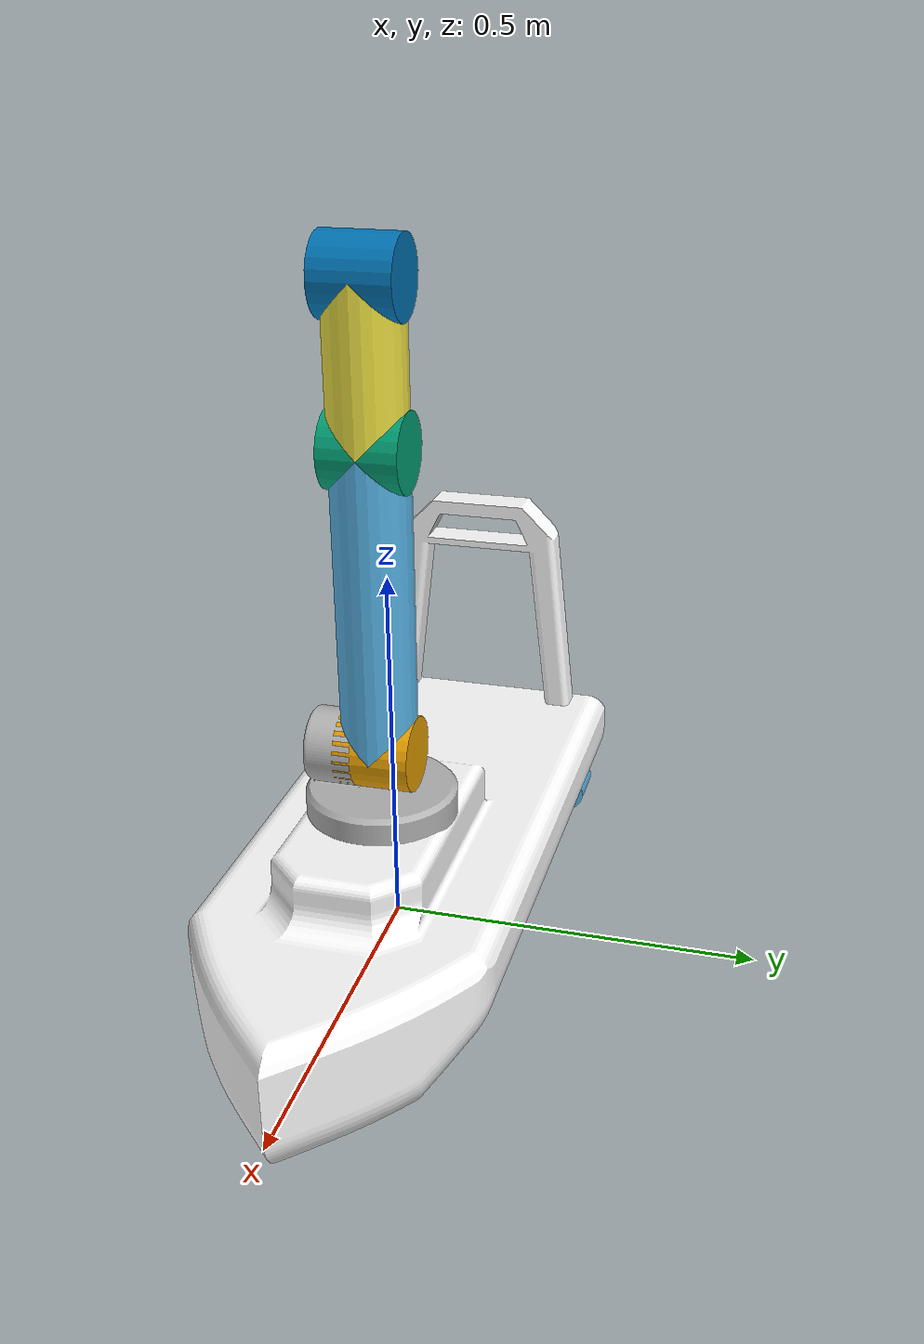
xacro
<?xml version="1.0"?>

<robot name="boat_arm" xmlns:xacro="http://www.ros.org/wiki/xacro">
  <xacro:include filename="$(find semesterprosjekt)/urdf/common_macros.xacro" />
  <xacro:include filename="$(find semesterprosjekt)/urdf/boat_arm.urdf.gazebo" />

  <material name="COLOR">
   <color rgba="1 1 1 1"/>
 </material>
  <link name='base_link'>
    <pose>0 0 0.1 0 0 0</pose>
    <visual name='chassis_visual'>
      <origin xyz="0 0 -0.1" rpy="0 0 ${pi/2}"/>
      <geometry>
        <mesh filename="package://semesterprosjekt/mesh/RobotBatPOrsjekt_v4_v5.stl" scale="0.001 0.001 0.001"/>
      </geometry>
      <material name="COLOR"/>
    </visual>
    <collision>
      <origin xyz="0 0 0.07" rpy="0 0 0"/>
      <geometry>
        <box size="1 0.4 0.1"/>
      </geometry>
    </collision>
    <inertial>
      <mass value="10"/>
      <inertia ixx="0.1075" ixy="0.0" ixz="0.0" iyy="10.0008" iyz="0.0" izz="10.0075"/>
    </inertial>
</link>

  <link name='left_thruster'>
    <visual>
      <geometry>
       <cylinder length="0.07" radius="0.03"/>
     </geometry>
     <origin rpy="${pi/2} 0 ${pi/2}" xyz="-0.465 0.15 -0.03"/>
   </visual>
  </link>

  <link name='right_thruster'>
    <visual>
      <geometry>
       <cylinder length="0.07" radius="0.03"/>
     </geometry>
     <origin rpy="${pi/2} 0 ${pi/2}" xyz="-0.465 -0.15 -0.03"/>
   </visual>
  </link>

  <joint name="base_to_left_thruster" type="fixed">
    <parent link="base_link"/>
    <child link="left_thruster"/>
  </joint>

  <joint name="base_to_right_thruster" type="fixed">
    <parent link="base_link"/>
    <child link="right_thruster"/>
  </joint>

  <joint name="left_front_wheel_j" type="continuous">
    <origin xyz="0.20 0.20 0" rpy="${-pi/2} 0 0"/>
    <parent link="base_link"/>
    <child link="lf_wheel"/>
    <axis xyz="0 0 1" rpy="0 0 0"/>
    <limit effort="100" velocity="100"/>
  </joint>

  <xacro:link_wheel link_name="lf_wheel">
    <!-- collison -->
    <origin xyz="0 0 0" rpy="0 0 0"/>
    <!-- inertia -->
    <origin xyz="0 0 0" rpy="0 0 0"/>
  </xacro:link_wheel>

  <joint name="right_front_wheel_j" type="continuous">
    <origin xyz="0.20 -0.20 0" rpy="${-pi/2} 0 0"/>
    <parent link="base_link"/>
    <child link="rf_wheel"/>
    <axis xyz="0 0 1" rpy="0 0 0"/>
    <limit effort="100" velocity="100"/>
  </joint>

  <xacro:link_wheel link_name="rf_wheel">
    <!-- collison -->
    <origin xyz="0 0 0" rpy="0 0 0"/>
    <!-- inertia -->
    <origin xyz="0 0 0" rpy="0 0 0"/>
  </xacro:link_wheel>

  <joint name="left_rear_wheel_j" type="continuous">
    <origin xyz="-0.20 0.20 0" rpy="${-pi/2} 0 0"/>
    <parent link="base_link"/>
    <child link="lr_wheel"/>
    <axis xyz="0 0 1" rpy="0 0 0"/>
    <limit effort="100" velocity="100"/>
  </joint>

  <xacro:link_wheel link_name="lr_wheel">
    <!-- collison -->
    <origin xyz="0 0 0" rpy="0 0 0"/>
    <!-- inertia -->
    <origin xyz="0 0 0" rpy="0 0 0"/>
  </xacro:link_wheel>

  <joint name="right_rear_wheel_j" type="continuous">
    <origin xyz="-0.20 -0.20 0" rpy="${-pi/2} 0 0"/>
    <parent link="base_link"/>
    <child link="rr_wheel"/>
    <axis xyz="0 0 1" rpy="0 0 0"/>
    <limit effort="100" velocity="100"/>
  </joint>

  <xacro:link_wheel link_name="rr_wheel">
    <!-- collison -->
    <origin xyz="0 0 0" rpy="0 0 0"/>
    <!-- inertia -->
    <origin xyz="0 0 0" rpy="0 0 0"/>
  </xacro:link_wheel>

  <!-- ROBOTIC ARM -->

  <!-- ARM BASE -->
  <joint type="revolute" name="arm_base_joint">
    <origin xyz="0.05 0 0.18" rpy="0 0 0"/>
    <child link="arm_base_link"/>
    <parent link="base_link"/>
    <axis xyz="0 0 1" rpy="0 0 0"/>
    <limit effort="100" velocity="100" lower="-${pi}" upper="${pi}"/>
  </joint>

  <xacro:link_cylinder link_name="arm_base_link" radius="${0.20/2}" length="0.10" density="1" mesh_name="package://semesterprosjekt/mesh/Trash_Arm_F1_Fixed04.stl">
    <!-- origin visual -->
    <origin xyz="0 0 0" rpy="0 0 ${pi/2}"/>
    <!-- origin collision -->
    <origin xyz="0 0 0" rpy="0 0 0"/>
    <!-- origin interia -->
    <origin xyz="0 0 0" rpy="0 0 0"/>
  </xacro:link_cylinder>

  <transmission name="arm_base_trans">
    <type>transmission_interface/SimpleTransmission</type>
    <joint name="arm_base_joint">
      <hardwareInterface>hardware_interface/PositionJointInterface</hardwareInterface>
    </joint>
    <actuator name="arm_base_motor">
      <hardwareInterface>hardware_interface/PositionJointInterface</hardwareInterface>
      <mechanicalReduction>1</mechanicalReduction>
    </actuator>
  </transmission>

  <!-- LINK 1 -->
  <joint type="revolute" name="link_1_joint">
    <origin xyz="0 0 0.10" rpy="-${pi/2} 0 0"/>
    <child link="link_1_link"/>
    <parent link="arm_base_link"/>
    <axis xyz="0 0 1" rpy="0 0 0"/>
    <limit effort="100" velocity="100" lower="-${pi}" upper="${pi}"/>
  </joint>

  <xacro:link_cylinder link_name="link_1_link" radius="${0.10/2}" length="0.10" density="1"  >
    <!-- origin visual -->
    <origin xyz="0 0 0" rpy="-${pi} 0 0"/>
    <!-- origin collision -->
    <origin xyz="0 0 0" rpy="0 0 0"/>
    <!-- origin interia -->
    <origin xyz="0 0 0" rpy="0 0 0"/>
  </xacro:link_cylinder>

  <transmission name="joint_1_trans">
    <type>transmission_interface/SimpleTransmission</type>
    <joint name="link_1_joint">
      <hardwareInterface>hardware_interface/PositionJointInterface</hardwareInterface>
    </joint>
    <actuator name="joint_1_motor">
      <hardwareInterface>hardware_interface/PositionJointInterface</hardwareInterface>
      <mechanicalReduction>1</mechanicalReduction>
    </actuator>
  </transmission>

  <!-- LINK 2 -->
  <joint type="revolute" name="link_2_joint">
    <origin xyz="0 -${0.40/2} 0" rpy="${pi/2} 0 0"/>
    <child link="link_2_link"/>
    <parent link="link_1_link"/>
    <axis xyz="0 0 1" rpy="0 0 0"/>
    <limit effort="100" velocity="100" lower="-${pi/2}" upper="${pi/2}"/>
  </joint>

  <xacro:link_cylinder link_name="link_2_link" radius="${0.10/2}" length="0.40" density="1">
    <!-- origin visual -->
    <origin xyz="0 0 0" rpy="0 0 0 "/>
    <!-- origin collision -->
    <origin xyz="0 0 0" rpy="0 0 0"/>
    <!-- origin interia -->
    <origin xyz="0 0 0" rpy="0 0 0"/>
  </xacro:link_cylinder>

  <transmission name="joint_2_trans">
    <type>transmission_interface/SimpleTransmission</type>
    <joint name="link_2_joint">
      <hardwareInterface>hardware_interface/PositionJointInterface</hardwareInterface>
    </joint>
    <actuator name="joint_2_motor">
      <hardwareInterface>hardware_interface/PositionJointInterface</hardwareInterface>
      <mechanicalReduction>1</mechanicalReduction>
    </actuator>
  </transmission>

  <!-- LINK 3 -->
  <joint type="revolute" name="link_3_joint">
    <origin xyz="0 0 ${0.40/2}" rpy="-${pi/2} 0 0"/>
    <child link="link_3_link"/>
    <parent link="link_2_link"/>
    <axis xyz="0 0 1" rpy="0 0 0"/>
    <limit effort="100" velocity="100" lower="-${pi}" upper="${pi}"/>
  </joint>

  <xacro:link_cylinder link_name="link_3_link" radius="${0.10/2}" length="0.10" density="1" >
    <!-- origin visual -->
    <origin xyz="0 0 0" rpy="0 0 0"/>
    <!-- origin collision -->
    <origin xyz="0 0 0" rpy="0 0 0"/>
    <!-- origin interia -->
    <origin xyz="0 0 0" rpy="0 0 0"/>
  </xacro:link_cylinder>

  <transmission name="joint_3_trans">
    <type>transmission_interface/SimpleTransmission</type>
    <joint name="link_3_joint">
      <hardwareInterface>hardware_interface/PositionJointInterface</hardwareInterface>
    </joint>
    <actuator name="joint_3_motor">
      <hardwareInterface>hardware_interface/PositionJointInterface</hardwareInterface>
      <mechanicalReduction>1</mechanicalReduction>
    </actuator>
  </transmission>

  <!-- LINK 4 -->
  <joint type="revolute" name="link_4_joint">
    <origin xyz="0 -${0.20/2} 0" rpy="${pi/2} 0 0"/>
    <child link="link_4_link"/>
    <parent link="link_3_link"/>
    <axis xyz="0 0 1" rpy="0 0 0"/>
    <limit effort="100" velocity="100" lower="-${pi/2}" upper="${pi/2}"/>
  </joint>

  <xacro:link_cylinder link_name="link_4_link" radius="${0.10/2}" length="0.20" density="1" >
    <!-- origin visual -->
    <origin xyz="0 0 0" rpy="0 0 0"/>
    <!-- origin collision -->
    <origin xyz="0 0 0" rpy="0 0 0"/>
    <!-- origin interia -->
    <origin xyz="0 0 0" rpy="0 0 0"/>
  </xacro:link_cylinder>

  <transmission name="joint_4_trans">
    <type>transmission_interface/SimpleTransmission</type>
    <joint name="link_4_joint">
      <hardwareInterface>hardware_interface/PositionJointInterface</hardwareInterface>
    </joint>
    <actuator name="joint_4_motor">
      <hardwareInterface>hardware_interface/PositionJointInterface</hardwareInterface>
      <mechanicalReduction>1</mechanicalReduction>
    </actuator>
  </transmission>

  <!-- LINK 5 -->
  <joint type="revolute" name="link_5_joint">
    <origin xyz="0 0 0.10" rpy="-${pi/2} 0 0"/>
    <child link="link_5_link"/>
    <parent link="link_4_link"/>
    <axis xyz="0 0 1" rpy="0 0 0"/>
    <limit effort="100" velocity="100" lower="-${pi}" upper="${pi}"/>
  </joint>

  <xacro:link_cylinder link_name="link_5_link" radius="${0.10/2}" length="0.10" density="1" >
    <!-- origin visual -->
    <origin xyz="0 0 0" rpy="0 0 0"/>
    <!-- origin collision -->
    <origin xyz="0 0 0" rpy="0 0 0"/>
    <!-- origin interia -->
    <origin xyz="0 0 0" rpy="0 0 0"/>
  </xacro:link_cylinder>

  <transmission name="joint_5_trans">
    <type>transmission_interface/SimpleTransmission</type>
    <joint name="link_5_joint">
      <hardwareInterface>hardware_interface/PositionJointInterface</hardwareInterface>
    </joint>
    <actuator name="joint_5_motor">
      <hardwareInterface>hardware_interface/PositionJointInterface</hardwareInterface>
      <mechanicalReduction>1</mechanicalReduction>
    </actuator>
  </transmission>

</robot>

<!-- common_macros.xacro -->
<robot name="xacro_macros" xmlns:xacro="http://ros.org/wiki/xacro">

  <xacro:macro name="link_box" params="link_name length width height density:=1 mesh_name:='nofile' *origin_vis *origin_col *origin_inertial">
    <xacro:property name="mass" value="${length*height*width*density}" />
    <link name="${link_name}">
      <visual>
        <xacro:insert_block name="origin_vis" />
        <geometry>
          <xacro:if value="${mesh_name == 'nofile'}">
            <box size="${length} ${width} ${height}"/>
          </xacro:if>
          <xacro:unless value="${mesh_name == 'nofile'}">
            <mesh filename="${mesh_name}" scale="0.001 0.001 0.001" />
          </xacro:unless>
        </geometry>
      </visual>
      <collision>
        <xacro:insert_block name="origin_col" />
        <geometry>
          <box size="${length} ${width} ${height}"/>
        </geometry>
      </collision>
      <inertial>
        <xacro:insert_block name="origin_inertial" />
        <mass value="${mass}"/>
        <inertia
          ixx="${mass*(pow(height,2) + pow(width,2))/12}" ixy="0.0" ixz="0.0"
          iyy="${mass*(pow(length,2) + pow(height,2))/12}" iyz="0.0"
          izz="${mass*(pow(length,2) + pow(width,2))/12}"/>
      </inertial>
    </link>
  </xacro:macro>

  <xacro:macro name="link_cylinder" params="link_name radius length density:=1 mesh_name:='nofile' *origin_vis *origin_col *origin_inertial">
    <xacro:property name="mass" value="${pi*length*pow(radius,2)*density}" />
    <link name="${link_name}">
      <visual>
        <xacro:insert_block name="origin_vis" />
        <geometry>
          <xacro:if value="${mesh_name == 'nofile'}">
            <cylinder length="${length}" radius="${radius}"/>
          </xacro:if>
          <xacro:unless value="${mesh_name == 'nofile'}">
            <mesh filename="${mesh_name}" scale="0.001 0.001 0.001" />
          </xacro:unless>
        </geometry>
      </visual>
      <collision>
        <xacro:insert_block name="origin_col" />
        <geometry>
          <cylinder length="${length}" radius="${radius}"/>
        </geometry>
      </collision>
      <inertial>
        <xacro:insert_block name="origin_inertial" />
        <mass value="${mass}"/>
        <inertia
          ixx="${mass*(3*pow(radius,2)+pow(length,2))/12}" ixy="0.0" ixz="0.0"
          iyy="${mass*(3*pow(radius,2)+pow(length,2))/12}" iyz="0.0"
          izz="${mass*pow(radius,2)/2}"/>
      </inertial>
    </link>
  </xacro:macro>

  <xacro:macro name="link_sphere" params="link_name radius density:=1 mesh_name:='nofile' *origin_vis *origin_col *origin_inertial">
    <xacro:property name="mass" value="${(4/3)*pi*pow(radius,3)}" />
    <link name="${link_name}">
      <visual>
        <xacro:insert_block name="origin_vis" />
        <geometry>
          <xacro:if value="${mesh_name == 'nofile'}">
            <sphere radius="${radius}"/>
          </xacro:if>
          <xacro:unless value="${mesh_name == 'nofile'}">
            <mesh filename="${mesh_name}" />
          </xacro:unless>
        </geometry>
      </visual>
      <collision>
        <xacro:insert_block name="origin_col" />
        <geometry>
          <sphere radius="${radius}"/>
        </geometry>
      </collision>
      <inertial>
        <xacro:insert_block name="origin_inertial" />
        <mass value="${mass}"/>
        <inertia
          ixx="${2*mass*pow(radius,2)/5}" ixy="0.0" ixz="0.0"
          iyy="${2*mass*pow(radius,2)/5}" iyz="0.0"
          izz="${2*mass*pow(radius,2)/5}"/>
      </inertial>
    </link>
  </xacro:macro>

  <xacro:macro name="link_wheel" params="link_name length:=0.10 radius:=0.10 density:=20 *origin_col *origin_inertial">
    <xacro:property name="mass" value="${pi*length*pow(radius,2)*density}" />
    <link name="${link_name}">
      <collision>
        <xacro:insert_block name="origin_col" />
        <geometry>
          <cylinder length="${length}" radius="${radius}"/>
        </geometry>
      </collision>
      <inertial>
        <xacro:insert_block name="origin_inertial" />
        <mass value="${mass}"/>
        <inertia
          ixx="${mass*(3*pow(radius,2)+pow(length,2))/12}" ixy="0.0" ixz="0.0"
          iyy="${mass*(3*pow(radius,2)+pow(length,2))/12}" iyz="0.0"
          izz="${mass*pow(radius,2)/2}"/>
      </inertial>
    </link>
  </xacro:macro>

</robot>
